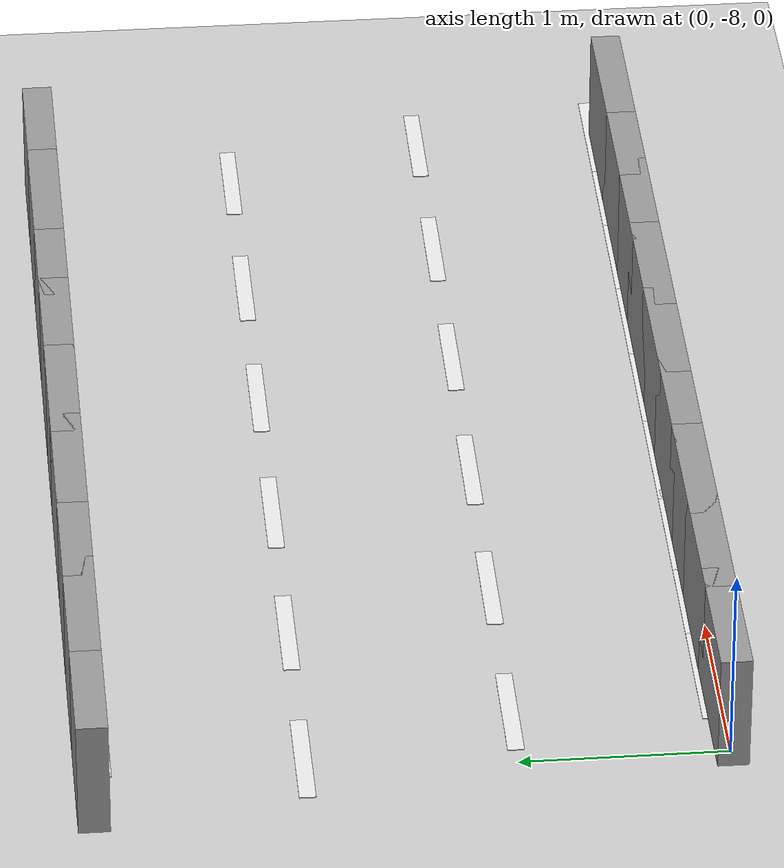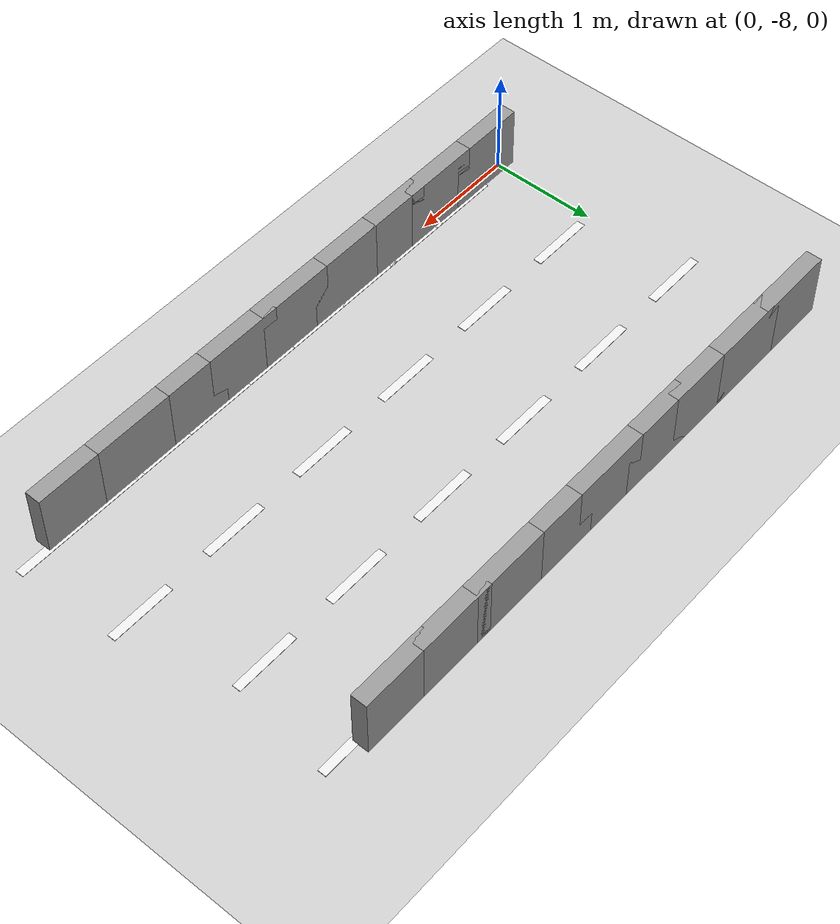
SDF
<sdf version="1.7">
 <world name="default">
  <model name="ground_plane">
   <static>1</static>
   <link name="link">
    <collision name="collision">
     <geometry><plane><normal>0 0 1</normal><size>100 100</size></plane></geometry>
     <surface><friction><ode><mu>100</mu><mu2>50</mu2></ode></friction></surface>
    </collision>
    <visual name="visual">
     <cast_shadows>0</cast_shadows>
     <geometry><plane><normal>0 0 1</normal><size>100 100</size></plane></geometry>
     <material>
      <script><uri>file://media/materials/scripts/gazebo.material</uri><name>Gazebo/Grey</name></script>
     </material>
    </visual>
   </link>
  </model>
  <model name="superspeedway">
   <link name="Wall_67">
    <collision name="Wall_67_Collision">
     <geometry><box><size>0.7500 0.1500 0.6000</size></box></geometry>
     <pose>0 0 0.3000 0 -0 0</pose>
    </collision>
    <visual name="Wall_67_Visual">
     <pose>0 0 0.3000 0 -0 0</pose>
     <geometry><box><size>0.7500 0.1500 0.6000</size></box></geometry>
     <material>
      <script><uri>file://media/materials/scripts/gazebo.material</uri><name>Gazebo/Grey</name></script>
      <ambient>1 1 1 1</ambient>
     </material>
    </visual>
    <pose>0.0066 -5.0000 0 0 -0 0.00000</pose>
   </link>
   <link name="Wall_68">
    <collision name="Wall_68_Collision">
     <geometry><box><size>0.7500 0.1500 0.6000</size></box></geometry>
     <pose>0 0 0.3000 0 -0 0</pose>
    </collision>
    <visual name="Wall_68_Visual">
     <pose>0 0 0.3000 0 -0 0</pose>
     <geometry><box><size>0.7500 0.1500 0.6000</size></box></geometry>
     <material>
      <script><uri>file://media/materials/scripts/gazebo.material</uri><name>Gazebo/Grey</name></script>
      <ambient>1 1 1 1</ambient>
     </material>
    </visual>
    <pose>0.6066 -5.0000 0 0 -0 0.00000</pose>
   </link>
   <link name="Wall_69">
    <collision name="Wall_69_Collision">
     <geometry><box><size>0.7500 0.1500 0.6000</size></box></geometry>
     <pose>0 0 0.3000 0 -0 0</pose>
    </collision>
    <visual name="Wall_69_Visual">
     <pose>0 0 0.3000 0 -0 0</pose>
     <geometry><box><size>0.7500 0.1500 0.6000</size></box></geometry>
     <material>
      <script><uri>file://media/materials/scripts/gazebo.material</uri><name>Gazebo/Grey</name></script>
      <ambient>1 1 1 1</ambient>
     </material>
    </visual>
    <pose>1.2066 -5.0000 0 0 -0 0.00000</pose>
   </link>
   <link name="Wall_70">
    <collision name="Wall_70_Collision">
     <geometry><box><size>0.7500 0.1500 0.6000</size></box></geometry>
     <pose>0 0 0.3000 0 -0 0</pose>
    </collision>
    <visual name="Wall_70_Visual">
     <pose>0 0 0.3000 0 -0 0</pose>
     <geometry><box><size>0.7500 0.1500 0.6000</size></box></geometry>
     <material>
      <script><uri>file://media/materials/scripts/gazebo.material</uri><name>Gazebo/Grey</name></script>
      <ambient>1 1 1 1</ambient>
     </material>
    </visual>
    <pose>1.8066 -5.0000 0 0 -0 0.00000</pose>
   </link>
   <link name="Wall_71">
    <collision name="Wall_71_Collision">
     <geometry><box><size>0.7500 0.1500 0.6000</size></box></geometry>
     <pose>0 0 0.3000 0 -0 0</pose>
    </collision>
    <visual name="Wall_71_Visual">
     <pose>0 0 0.3000 0 -0 0</pose>
     <geometry><box><size>0.7500 0.1500 0.6000</size></box></geometry>
     <material>
      <script><uri>file://media/materials/scripts/gazebo.material</uri><name>Gazebo/Grey</name></script>
      <ambient>1 1 1 1</ambient>
     </material>
    </visual>
    <pose>2.4066 -5.0000 0 0 -0 0.00000</pose>
   </link>
   <link name="Wall_72">
    <collision name="Wall_72_Collision">
     <geometry><box><size>0.7500 0.1500 0.6000</size></box></geometry>
     <pose>0 0 0.3000 0 -0 0</pose>
    </collision>
    <visual name="Wall_72_Visual">
     <pose>0 0 0.3000 0 -0 0</pose>
     <geometry><box><size>0.7500 0.1500 0.6000</size></box></geometry>
     <material>
      <script><uri>file://media/materials/scripts/gazebo.material</uri><name>Gazebo/Grey</name></script>
      <ambient>1 1 1 1</ambient>
     </material>
    </visual>
    <pose>3.0066 -5.0000 0 0 -0 0.00000</pose>
   </link>
   <link name="Wall_73">
    <collision name="Wall_73_Collision">
     <geometry><box><size>0.7500 0.1500 0.6000</size></box></geometry>
     <pose>0 0 0.3000 0 -0 0</pose>
    </collision>
    <visual name="Wall_73_Visual">
     <pose>0 0 0.3000 0 -0 0</pose>
     <geometry><box><size>0.7500 0.1500 0.6000</size></box></geometry>
     <material>
      <script><uri>file://media/materials/scripts/gazebo.material</uri><name>Gazebo/Grey</name></script>
      <ambient>1 1 1 1</ambient>
     </material>
    </visual>
    <pose>3.6066 -5.0000 0 0 -0 0.00000</pose>
   </link>
   <link name="Wall_74">
    <collision name="Wall_74_Collision">
     <geometry><box><size>0.7500 0.1500 0.6000</size></box></geometry>
     <pose>0 0 0.3000 0 -0 0</pose>
    </collision>
    <visual name="Wall_74_Visual">
     <pose>0 0 0.3000 0 -0 0</pose>
     <geometry><box><size>0.7500 0.1500 0.6000</size></box></geometry>
     <material>
      <script><uri>file://media/materials/scripts/gazebo.material</uri><name>Gazebo/Grey</name></script>
      <ambient>1 1 1 1</ambient>
     </material>
    </visual>
    <pose>4.2066 -5.0000 0 0 -0 0.00000</pose>
   </link>
   <link name="Wall_75">
    <collision name="Wall_75_Collision">
     <geometry><box><size>0.7500 0.1500 0.6000</size></box></geometry>
     <pose>0 0 0.3000 0 -0 0</pose>
    </collision>
    <visual name="Wall_75_Visual">
     <pose>0 0 0.3000 0 -0 0</pose>
     <geometry><box><size>0.7500 0.1500 0.6000</size></box></geometry>
     <material>
      <script><uri>file://media/materials/scripts/gazebo.material</uri><name>Gazebo/Grey</name></script>
      <ambient>1 1 1 1</ambient>
     </material>
    </visual>
    <pose>4.8066 -5.0000 0 0 -0 0.00000</pose>
   </link>
   <link name="Wall_184">
    <collision name="Wall_184_Collision">
     <geometry><box><size>0.7500 0.1500 0.6000</size></box></geometry>
     <pose>0 0 0.3000 0 -0 0</pose>
    </collision>
    <visual name="Wall_184_Visual">
     <pose>0 0 0.3000 0 -0 0</pose>
     <geometry><box><size>0.7500 0.1500 0.6000</size></box></geometry>
     <material>
      <script><uri>file://media/materials/scripts/gazebo.material</uri><name>Gazebo/Grey</name></script>
      <ambient>1 1 1 1</ambient>
     </material>
    </visual>
    <pose>0.2695 -8.0000 0 0 -0 0.00000</pose>
   </link>
   <link name="Wall_185">
    <collision name="Wall_185_Collision">
     <geometry><box><size>0.7500 0.1500 0.6000</size></box></geometry>
     <pose>0 0 0.3000 0 -0 0</pose>
    </collision>
    <visual name="Wall_185_Visual">
     <pose>0 0 0.3000 0 -0 0</pose>
     <geometry><box><size>0.7500 0.1500 0.6000</size></box></geometry>
     <material>
      <script><uri>file://media/materials/scripts/gazebo.material</uri><name>Gazebo/Grey</name></script>
      <ambient>1 1 1 1</ambient>
     </material>
    </visual>
    <pose>0.8695 -8.0000 0 0 -0 0.00000</pose>
   </link>
   <link name="Wall_186">
    <collision name="Wall_186_Collision">
     <geometry><box><size>0.7500 0.1500 0.6000</size></box></geometry>
     <pose>0 0 0.3000 0 -0 0</pose>
    </collision>
    <visual name="Wall_186_Visual">
     <pose>0 0 0.3000 0 -0 0</pose>
     <geometry><box><size>0.7500 0.1500 0.6000</size></box></geometry>
     <material>
      <script><uri>file://media/materials/scripts/gazebo.material</uri><name>Gazebo/Grey</name></script>
      <ambient>1 1 1 1</ambient>
     </material>
    </visual>
    <pose>1.4695 -8.0000 0 0 -0 0.00000</pose>
   </link>
   <link name="Wall_187">
    <collision name="Wall_187_Collision">
     <geometry><box><size>0.7500 0.1500 0.6000</size></box></geometry>
     <pose>0 0 0.3000 0 -0 0</pose>
    </collision>
    <visual name="Wall_187_Visual">
     <pose>0 0 0.3000 0 -0 0</pose>
     <geometry><box><size>0.7500 0.1500 0.6000</size></box></geometry>
     <material>
      <script><uri>file://media/materials/scripts/gazebo.material</uri><name>Gazebo/Grey</name></script>
      <ambient>1 1 1 1</ambient>
     </material>
    </visual>
    <pose>2.0695 -8.0000 0 0 -0 0.00000</pose>
   </link>
   <link name="Wall_188">
    <collision name="Wall_188_Collision">
     <geometry><box><size>0.7500 0.1500 0.6000</size></box></geometry>
     <pose>0 0 0.3000 0 -0 0</pose>
    </collision>
    <visual name="Wall_188_Visual">
     <pose>0 0 0.3000 0 -0 0</pose>
     <geometry><box><size>0.7500 0.1500 0.6000</size></box></geometry>
     <material>
      <script><uri>file://media/materials/scripts/gazebo.material</uri><name>Gazebo/Grey</name></script>
      <ambient>1 1 1 1</ambient>
     </material>
    </visual>
    <pose>2.6695 -8.0000 0 0 -0 0.00000</pose>
   </link>
   <link name="Wall_189">
    <collision name="Wall_189_Collision">
     <geometry><box><size>0.7500 0.1500 0.6000</size></box></geometry>
     <pose>0 0 0.3000 0 -0 0</pose>
    </collision>
    <visual name="Wall_189_Visual">
     <pose>0 0 0.3000 0 -0 0</pose>
     <geometry><box><size>0.7500 0.1500 0.6000</size></box></geometry>
     <material>
      <script><uri>file://media/materials/scripts/gazebo.material</uri><name>Gazebo/Grey</name></script>
      <ambient>1 1 1 1</ambient>
     </material>
    </visual>
    <pose>3.2695 -8.0000 0 0 -0 0.00000</pose>
   </link>
   <link name="Wall_190">
    <collision name="Wall_190_Collision">
     <geometry><box><size>0.7500 0.1500 0.6000</size></box></geometry>
     <pose>0 0 0.3000 0 -0 0</pose>
    </collision>
    <visual name="Wall_190_Visual">
     <pose>0 0 0.3000 0 -0 0</pose>
     <geometry><box><size>0.7500 0.1500 0.6000</size></box></geometry>
     <material>
      <script><uri>file://media/materials/scripts/gazebo.material</uri><name>Gazebo/Grey</name></script>
      <ambient>1 1 1 1</ambient>
     </material>
    </visual>
    <pose>3.8695 -8.0000 0 0 -0 0.00000</pose>
   </link>
   <link name="Wall_191">
    <collision name="Wall_191_Collision">
     <geometry><box><size>0.7500 0.1500 0.6000</size></box></geometry>
     <pose>0 0 0.3000 0 -0 0</pose>
    </collision>
    <visual name="Wall_191_Visual">
     <pose>0 0 0.3000 0 -0 0</pose>
     <geometry><box><size>0.7500 0.1500 0.6000</size></box></geometry>
     <material>
      <script><uri>file://media/materials/scripts/gazebo.material</uri><name>Gazebo/Grey</name></script>
      <ambient>1 1 1 1</ambient>
     </material>
    </visual>
    <pose>4.4695 -8.0000 0 0 -0 0.00000</pose>
   </link>
   <link name="Wall_192">
    <collision name="Wall_192_Collision">
     <geometry><box><size>0.7500 0.1500 0.6000</size></box></geometry>
     <pose>0 0 0.3000 0 -0 0</pose>
    </collision>
    <visual name="Wall_192_Visual">
     <pose>0 0 0.3000 0 -0 0</pose>
     <geometry><box><size>0.7500 0.1500 0.6000</size></box></geometry>
     <material>
      <script><uri>file://media/materials/scripts/gazebo.material</uri><name>Gazebo/Grey</name></script>
      <ambient>1 1 1 1</ambient>
     </material>
    </visual>
    <pose>5.0695 -8.0000 0 0 -0 0.00000</pose>
   </link>
   <link name="Paint_68">
    <visual name="Paint_68_Visual">
     <pose>0 0 0.0020 0 -0 0</pose>
     <geometry><box><size>0.6800 0.0800 0.0040</size></box></geometry>
     <material>
      <script><uri>file://media/materials/scripts/gazebo.material</uri><name>Gazebo/White</name></script>
      <ambient>1 1 1 1</ambient>
     </material>
    </visual>
    <pose>0.3833 -5.0600 0 0 -0 0.00000</pose>
   </link>
   <link name="Paint_69">
    <visual name="Paint_69_Visual">
     <pose>0 0 0.0020 0 -0 0</pose>
     <geometry><box><size>0.6800 0.0800 0.0040</size></box></geometry>
     <material>
      <script><uri>file://media/materials/scripts/gazebo.material</uri><name>Gazebo/White</name></script>
      <ambient>1 1 1 1</ambient>
     </material>
    </visual>
    <pose>0.9833 -5.0600 0 0 -0 0.00000</pose>
   </link>
   <link name="Paint_70">
    <visual name="Paint_70_Visual">
     <pose>0 0 0.0020 0 -0 0</pose>
     <geometry><box><size>0.6800 0.0800 0.0040</size></box></geometry>
     <material>
      <script><uri>file://media/materials/scripts/gazebo.material</uri><name>Gazebo/White</name></script>
      <ambient>1 1 1 1</ambient>
     </material>
    </visual>
    <pose>1.5833 -5.0600 0 0 -0 0.00000</pose>
   </link>
   <link name="Paint_71">
    <visual name="Paint_71_Visual">
     <pose>0 0 0.0020 0 -0 0</pose>
     <geometry><box><size>0.6800 0.0800 0.0040</size></box></geometry>
     <material>
      <script><uri>file://media/materials/scripts/gazebo.material</uri><name>Gazebo/White</name></script>
      <ambient>1 1 1 1</ambient>
     </material>
    </visual>
    <pose>2.1833 -5.0600 0 0 -0 0.00000</pose>
   </link>
   <link name="Paint_72">
    <visual name="Paint_72_Visual">
     <pose>0 0 0.0020 0 -0 0</pose>
     <geometry><box><size>0.6800 0.0800 0.0040</size></box></geometry>
     <material>
      <script><uri>file://media/materials/scripts/gazebo.material</uri><name>Gazebo/White</name></script>
      <ambient>1 1 1 1</ambient>
     </material>
    </visual>
    <pose>2.7833 -5.0600 0 0 -0 0.00000</pose>
   </link>
   <link name="Paint_73">
    <visual name="Paint_73_Visual">
     <pose>0 0 0.0020 0 -0 0</pose>
     <geometry><box><size>0.6800 0.0800 0.0040</size></box></geometry>
     <material>
      <script><uri>file://media/materials/scripts/gazebo.material</uri><name>Gazebo/White</name></script>
      <ambient>1 1 1 1</ambient>
     </material>
    </visual>
    <pose>3.3833 -5.0600 0 0 -0 0.00000</pose>
   </link>
   <link name="Paint_74">
    <visual name="Paint_74_Visual">
     <pose>0 0 0.0020 0 -0 0</pose>
     <geometry><box><size>0.6800 0.0800 0.0040</size></box></geometry>
     <material>
      <script><uri>file://media/materials/scripts/gazebo.material</uri><name>Gazebo/White</name></script>
      <ambient>1 1 1 1</ambient>
     </material>
    </visual>
    <pose>3.9833 -5.0600 0 0 -0 0.00000</pose>
   </link>
   <link name="Paint_75">
    <visual name="Paint_75_Visual">
     <pose>0 0 0.0020 0 -0 0</pose>
     <geometry><box><size>0.6800 0.0800 0.0040</size></box></geometry>
     <material>
      <script><uri>file://media/materials/scripts/gazebo.material</uri><name>Gazebo/White</name></script>
      <ambient>1 1 1 1</ambient>
     </material>
    </visual>
    <pose>4.5833 -5.0600 0 0 -0 0.00000</pose>
   </link>
   <link name="Paint_76">
    <visual name="Paint_76_Visual">
     <pose>0 0 0.0020 0 -0 0</pose>
     <geometry><box><size>0.6800 0.0800 0.0040</size></box></geometry>
     <material>
      <script><uri>file://media/materials/scripts/gazebo.material</uri><name>Gazebo/White</name></script>
      <ambient>1 1 1 1</ambient>
     </material>
    </visual>
    <pose>5.1833 -5.0600 0 0 -0 0.00000</pose>
   </link>
   <link name="Paint_185">
    <visual name="Paint_185_Visual">
     <pose>0 0 0.0020 0 -0 0</pose>
     <geometry><box><size>0.6800 0.0800 0.0040</size></box></geometry>
     <material>
      <script><uri>file://media/materials/scripts/gazebo.material</uri><name>Gazebo/White</name></script>
      <ambient>1 1 1 1</ambient>
     </material>
    </visual>
    <pose>0.6033 -7.9400 0 0 -0 0.00000</pose>
   </link>
   <link name="Paint_186">
    <visual name="Paint_186_Visual">
     <pose>0 0 0.0020 0 -0 0</pose>
     <geometry><box><size>0.6800 0.0800 0.0040</size></box></geometry>
     <material>
      <script><uri>file://media/materials/scripts/gazebo.material</uri><name>Gazebo/White</name></script>
      <ambient>1 1 1 1</ambient>
     </material>
    </visual>
    <pose>1.2033 -7.9400 0 0 -0 0.00000</pose>
   </link>
   <link name="Paint_187">
    <visual name="Paint_187_Visual">
     <pose>0 0 0.0020 0 -0 0</pose>
     <geometry><box><size>0.6800 0.0800 0.0040</size></box></geometry>
     <material>
      <script><uri>file://media/materials/scripts/gazebo.material</uri><name>Gazebo/White</name></script>
      <ambient>1 1 1 1</ambient>
     </material>
    </visual>
    <pose>1.8033 -7.9400 0 0 -0 0.00000</pose>
   </link>
   <link name="Paint_188">
    <visual name="Paint_188_Visual">
     <pose>0 0 0.0020 0 -0 0</pose>
     <geometry><box><size>0.6800 0.0800 0.0040</size></box></geometry>
     <material>
      <script><uri>file://media/materials/scripts/gazebo.material</uri><name>Gazebo/White</name></script>
      <ambient>1 1 1 1</ambient>
     </material>
    </visual>
    <pose>2.4033 -7.9400 0 0 -0 0.00000</pose>
   </link>
   <link name="Paint_189">
    <visual name="Paint_189_Visual">
     <pose>0 0 0.0020 0 -0 0</pose>
     <geometry><box><size>0.6800 0.0800 0.0040</size></box></geometry>
     <material>
      <script><uri>file://media/materials/scripts/gazebo.material</uri><name>Gazebo/White</name></script>
      <ambient>1 1 1 1</ambient>
     </material>
    </visual>
    <pose>3.0033 -7.9400 0 0 -0 0.00000</pose>
   </link>
   <link name="Paint_190">
    <visual name="Paint_190_Visual">
     <pose>0 0 0.0020 0 -0 0</pose>
     <geometry><box><size>0.6800 0.0800 0.0040</size></box></geometry>
     <material>
      <script><uri>file://media/materials/scripts/gazebo.material</uri><name>Gazebo/White</name></script>
      <ambient>1 1 1 1</ambient>
     </material>
    </visual>
    <pose>3.6033 -7.9400 0 0 -0 0.00000</pose>
   </link>
   <link name="Paint_191">
    <visual name="Paint_191_Visual">
     <pose>0 0 0.0020 0 -0 0</pose>
     <geometry><box><size>0.6800 0.0800 0.0040</size></box></geometry>
     <material>
      <script><uri>file://media/materials/scripts/gazebo.material</uri><name>Gazebo/White</name></script>
      <ambient>1 1 1 1</ambient>
     </material>
    </visual>
    <pose>4.2033 -7.9400 0 0 -0 0.00000</pose>
   </link>
   <link name="Paint_192">
    <visual name="Paint_192_Visual">
     <pose>0 0 0.0020 0 -0 0</pose>
     <geometry><box><size>0.6800 0.0800 0.0040</size></box></geometry>
     <material>
      <script><uri>file://media/materials/scripts/gazebo.material</uri><name>Gazebo/White</name></script>
      <ambient>1 1 1 1</ambient>
     </material>
    </visual>
    <pose>4.8033 -7.9400 0 0 -0 0.00000</pose>
   </link>
   <link name="Paint_193">
    <visual name="Paint_193_Visual">
     <pose>0 0 0.0020 0 -0 0</pose>
     <geometry><box><size>0.6800 0.0800 0.0040</size></box></geometry>
     <material>
      <script><uri>file://media/materials/scripts/gazebo.material</uri><name>Gazebo/White</name></script>
      <ambient>1 1 1 1</ambient>
     </material>
    </visual>
    <pose>5.4033 -7.9400 0 0 -0 0.00000</pose>
   </link>
   <link name="Paint_264">
    <visual name="Paint_264_Visual">
     <pose>0 0 0.0020 0 -0 0</pose>
     <geometry><box><size>0.6000 0.0800 0.0040</size></box></geometry>
     <material>
      <script><uri>file://media/materials/scripts/gazebo.material</uri><name>Gazebo/White</name></script>
      <ambient>1 1 1 1</ambient>
     </material>
    </visual>
    <pose>0.1100 -6.0000 0 0 -0 0.00000</pose>
   </link>
   <link name="Paint_265">
    <visual name="Paint_265_Visual">
     <pose>0 0 0.0020 0 -0 0</pose>
     <geometry><box><size>0.6000 0.0800 0.0040</size></box></geometry>
     <material>
      <script><uri>file://media/materials/scripts/gazebo.material</uri><name>Gazebo/White</name></script>
      <ambient>1 1 1 1</ambient>
     </material>
    </visual>
    <pose>1.1100 -6.0000 0 0 -0 0.00000</pose>
   </link>
   <link name="Paint_266">
    <visual name="Paint_266_Visual">
     <pose>0 0 0.0020 0 -0 0</pose>
     <geometry><box><size>0.6000 0.0800 0.0040</size></box></geometry>
     <material>
      <script><uri>file://media/materials/scripts/gazebo.material</uri><name>Gazebo/White</name></script>
      <ambient>1 1 1 1</ambient>
     </material>
    </visual>
    <pose>2.1100 -6.0000 0 0 -0 0.00000</pose>
   </link>
   <link name="Paint_267">
    <visual name="Paint_267_Visual">
     <pose>0 0 0.0020 0 -0 0</pose>
     <geometry><box><size>0.6000 0.0800 0.0040</size></box></geometry>
     <material>
      <script><uri>file://media/materials/scripts/gazebo.material</uri><name>Gazebo/White</name></script>
      <ambient>1 1 1 1</ambient>
     </material>
    </visual>
    <pose>3.1100 -6.0000 0 0 -0 0.00000</pose>
   </link>
   <link name="Paint_268">
    <visual name="Paint_268_Visual">
     <pose>0 0 0.0020 0 -0 0</pose>
     <geometry><box><size>0.6000 0.0800 0.0040</size></box></geometry>
     <material>
      <script><uri>file://media/materials/scripts/gazebo.material</uri><name>Gazebo/White</name></script>
      <ambient>1 1 1 1</ambient>
     </material>
    </visual>
    <pose>4.1100 -6.0000 0 0 -0 0.00000</pose>
   </link>
   <link name="Paint_269">
    <visual name="Paint_269_Visual">
     <pose>0 0 0.0020 0 -0 0</pose>
     <geometry><box><size>0.6000 0.0800 0.0040</size></box></geometry>
     <material>
      <script><uri>file://media/materials/scripts/gazebo.material</uri><name>Gazebo/White</name></script>
      <ambient>1 1 1 1</ambient>
     </material>
    </visual>
    <pose>5.1100 -6.0000 0 0 -0 0.00000</pose>
   </link>
   <link name="Paint_332">
    <visual name="Paint_332_Visual">
     <pose>0 0 0.0020 0 -0 0</pose>
     <geometry><box><size>0.6000 0.0800 0.0040</size></box></geometry>
     <material>
      <script><uri>file://media/materials/scripts/gazebo.material</uri><name>Gazebo/White</name></script>
      <ambient>1 1 1 1</ambient>
     </material>
    </visual>
    <pose>0.3946 -7.0000 0 0 -0 0.00000</pose>
   </link>
   <link name="Paint_333">
    <visual name="Paint_333_Visual">
     <pose>0 0 0.0020 0 -0 0</pose>
     <geometry><box><size>0.6000 0.0800 0.0040</size></box></geometry>
     <material>
      <script><uri>file://media/materials/scripts/gazebo.material</uri><name>Gazebo/White</name></script>
      <ambient>1 1 1 1</ambient>
     </material>
    </visual>
    <pose>1.3946 -7.0000 0 0 -0 0.00000</pose>
   </link>
   <link name="Paint_334">
    <visual name="Paint_334_Visual">
     <pose>0 0 0.0020 0 -0 0</pose>
     <geometry><box><size>0.6000 0.0800 0.0040</size></box></geometry>
     <material>
      <script><uri>file://media/materials/scripts/gazebo.material</uri><name>Gazebo/White</name></script>
      <ambient>1 1 1 1</ambient>
     </material>
    </visual>
    <pose>2.3946 -7.0000 0 0 -0 0.00000</pose>
   </link>
   <link name="Paint_335">
    <visual name="Paint_335_Visual">
     <pose>0 0 0.0020 0 -0 0</pose>
     <geometry><box><size>0.6000 0.0800 0.0040</size></box></geometry>
     <material>
      <script><uri>file://media/materials/scripts/gazebo.material</uri><name>Gazebo/White</name></script>
      <ambient>1 1 1 1</ambient>
     </material>
    </visual>
    <pose>3.3946 -7.0000 0 0 -0 0.00000</pose>
   </link>
   <link name="Paint_336">
    <visual name="Paint_336_Visual">
     <pose>0 0 0.0020 0 -0 0</pose>
     <geometry><box><size>0.6000 0.0800 0.0040</size></box></geometry>
     <material>
      <script><uri>file://media/materials/scripts/gazebo.material</uri><name>Gazebo/White</name></script>
      <ambient>1 1 1 1</ambient>
     </material>
    </visual>
    <pose>4.3946 -7.0000 0 0 -0 0.00000</pose>
   </link>
   <link name="Paint_337">
    <visual name="Paint_337_Visual">
     <pose>0 0 0.0020 0 -0 0</pose>
     <geometry><box><size>0.6000 0.0800 0.0040</size></box></geometry>
     <material>
      <script><uri>file://media/materials/scripts/gazebo.material</uri><name>Gazebo/White</name></script>
      <ambient>1 1 1 1</ambient>
     </material>
    </visual>
    <pose>5.3946 -7.0000 0 0 -0 0.00000</pose>
   </link>
   <static>1</static>
  </model>
 </world>
</sdf>
